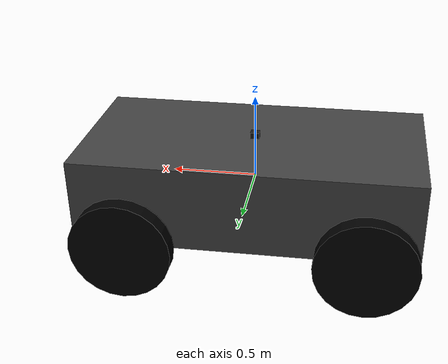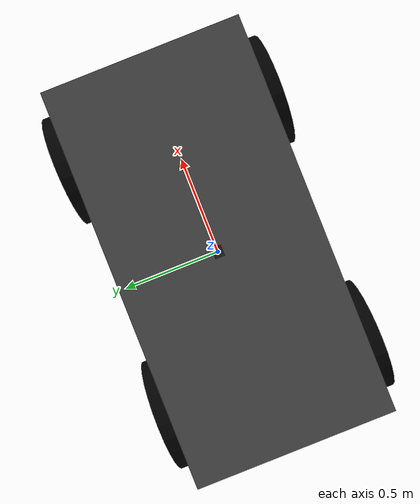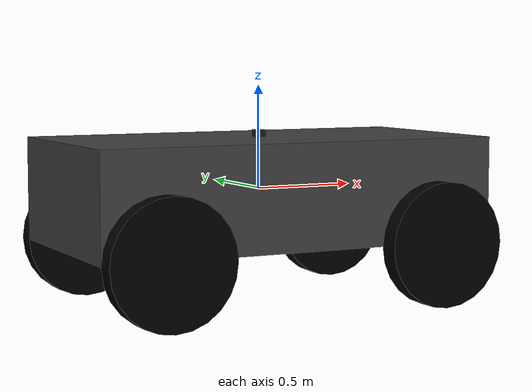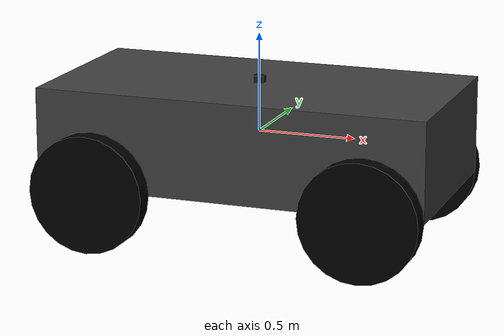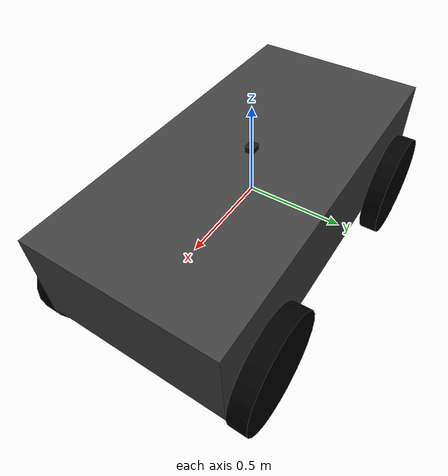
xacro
<?xml version="1.0"?>

<robot name="ackermann_steering_vehicle" xmlns:xacro="http://www.ros.org/wiki/xacro">

  <!-- Imports basically -->
  <xacro:include filename="$(find gazebo_ackermann_steering_vehicle)/sensors/lidar.xacro" />
  <xacro:include filename="$(find gazebo_ackermann_steering_vehicle)/sensors/imu.xacro" />

  <!-- Arguments -->
  <xacro:arg name="body_length" default="2.0" />
  <xacro:arg name="body_width" default="1.0" />
  <xacro:arg name="body_height" default="0.5" />
  <xacro:arg name="body_density" default="1000.0" />
  <xacro:arg name="wheel_radius" default="0.3" />
  <xacro:arg name="wheel_width" default="0.1" />
  <xacro:arg name="wheel_density" default="1000.0" />
  <xacro:arg name="max_steering_angle" default="0.6108" />
  <xacro:arg name="max_steering_angular_velocity" default="1.570796" />
  <xacro:arg name="max_steering_effort" default="1.0" />
  <xacro:arg name="max_velocity" default="1.0" />
  <xacro:arg name="max_effort" default="10.0" />

  <!-- Mathematical Constants -->
  <xacro:property name="PI" value="3.14159265"/>

  <!-- Vehicle Properties -->
  <xacro:property name="body_length" value="$(arg body_length)"/>
  <xacro:property name="body_width" value="$(arg body_width)"/>
  <xacro:property name="body_height" value="$(arg body_height)"/>
  <xacro:property name="body_density" value="$(arg body_density)"/>
  <xacro:property name="wheel_radius" value="$(arg wheel_radius)"/>
  <xacro:property name="wheel_width" value="$(arg wheel_width)"/>
  <xacro:property name="wheel_density" value="$(arg wheel_density)"/>
  <xacro:property name="max_steering_angle" value="$(arg max_steering_angle)"/>
  <xacro:property name="max_steering_angular_velocity" value="$(arg max_steering_angular_velocity)"/>
  <xacro:property name="max_steering_effort" value="$(arg max_steering_effort)"/>
  <xacro:property name="max_velocity" value="$(arg max_velocity)"/>
  <xacro:property name="max_effort" value="$(arg max_effort)"/>

  <xacro:property name="body_mass" value="${body_density * body_length * body_height * body_width}"/>
  <xacro:property name="body_inertia_x" value="${1.0/12.0 * body_mass * (body_height*body_height + body_width*body_width)}"/>
  <xacro:property name="body_inertia_y" value="${1.0/12.0 * body_mass * (body_length*body_length + body_height*body_height)}"/>
  <xacro:property name="body_inertia_z" value="${1.0/12.0 * body_mass * (body_length*body_length + body_width*body_width)}"/>
  <xacro:property name="wheel_separation" value="${body_width + wheel_width}"/>
  <xacro:property name="wheel_offset" value="${body_length/2 - wheel_radius}"/>
  <xacro:property name="wheel_mass" value="${wheel_density * PI * wheel_radius * wheel_radius * wheel_width}"/>
  <xacro:property name="wheel_inertia_x" value="${1.0/12.0 * wheel_mass * (3*wheel_radius*wheel_radius + wheel_width*wheel_width)}"/>
  <xacro:property name="wheel_inertia_y" value="${1.0/12.0 * wheel_mass * (3*wheel_radius*wheel_radius + wheel_width*wheel_width)}"/>
  <xacro:property name="wheel_inertia_z" value="${1.0/2.0 * wheel_mass * wheel_radius * wheel_radius}"/>
  <xacro:property name="max_wheel_angular_velocity" value="${max_velocity / wheel_radius}"/>

  <!-- Links -->

  <!-- Body Link -->
  <link name="body_link">
    <visual>
      <origin xyz="0.0 0.0 0.0" rpy="0.0 0.0 0.0"/>
      <geometry>
        <box size="${body_length} ${body_width} ${body_height}"/>
      </geometry>
      <material name="body_material">
        <color rgba="0.25 0.25 0.25 1.0"/>
      </material>
    </visual>
    <collision>
      <origin xyz="0.0 0.0 0.0" rpy="0.0 0.0 0.0"/>
      <geometry>
        <box size="${body_length} ${body_width} ${body_height}"/>
      </geometry>
    </collision>
    <inertial>
      <mass value="${body_mass}"/>
      <inertia ixx="${body_inertia_x}" ixy="0.0" ixz="0.0" iyy="${body_inertia_y}" iyz="0" izz="${body_inertia_z}"/>
      <origin xyz="0 0 0" rpy="0 0 0"/>
    </inertial>
  </link>

  <!-- Front Left Wheel -->
  <link name="front_left_wheel_link">
    <visual>
      <origin xyz="0.0 0.0 0.0" rpy="1.570795 0.0 0.0"/>
      <geometry>
        <cylinder radius="${wheel_radius}" length="${wheel_width}"/>
      </geometry>
      <material name="wheel_material">
        <color rgba="0.0 0.0 0.0 1.0"/>
      </material>
    </visual>
    <collision>
      <origin xyz="0.0 0.0 0.0" rpy="1.570795 0.0 0.0"/>
      <geometry>
        <cylinder radius="${wheel_radius}" length="${wheel_width}"/>
      </geometry>
    </collision>
    <inertial>
      <mass value="${wheel_mass}"/>
      <inertia ixx="${wheel_inertia_x}" ixy="0.0" ixz="0.0" iyy="${wheel_inertia_y}" iyz="0" izz="${wheel_inertia_z}"/>
      <origin xyz="0.0 0.0 0.0" rpy="1.570795 0.0 0.0"/>
    </inertial>
  </link>

    <!-- Front Left Wheel Steering -->
  <link name="front_left_steering_link">
    <visual>
      <origin xyz="0.0 0.0 0.0" rpy="1.570795 0.0 0.0"/>
      <geometry>
        <cylinder length="0.001" radius="0.01"/>
      </geometry>
      <material name="wheel_material">
        <color rgba="0.0 0.0 0.0 1.0"/>
      </material>
    </visual>
    <collision>
      <origin xyz="0.0 0.0 0.0" rpy="1.570795 0.0 0.0"/>
      <geometry>
        <cylinder length="0.001" radius="0.01"/>
      </geometry>
    </collision>
    <inertial>
      <mass value="0.01"/>
      <inertia ixx="0.0" ixy="0.0" ixz="0.0" iyy="0.0" iyz="0.0" izz="0.0"/>
      <origin xyz="0.0 0.0 0.0" rpy="1.570795 0.0 0.0"/>
    </inertial>
  </link>

  <!-- Front Right Wheel -->
  <link name="front_right_wheel_link">
    <visual>
      <origin xyz="0.0 0.0 0.0" rpy="1.570795 0.0 0.0"/>
      <geometry>
        <cylinder radius="${wheel_radius}" length="${wheel_width}"/>
      </geometry>
      <material name="wheel_material">
        <color rgba="0.0 0.0 0.0 1.0"/>
      </material>
    </visual>
    <collision>
      <origin xyz="0.0 0.0 0.0" rpy="1.570795 0.0 0.0"/>
      <geometry>
        <cylinder radius="${wheel_radius}" length="${wheel_width}"/>
      </geometry>
    </collision>
    <inertial>
      <mass value="${wheel_mass}"/>
      <inertia ixx="${wheel_inertia_x}" ixy="0.0" ixz="0.0" iyy="${wheel_inertia_y}" iyz="0" izz="${wheel_inertia_z}"/>
      <origin xyz="0.0 0.0 0.0" rpy="1.570795 0.0 0.0"/>
    </inertial>
  </link>

  <!-- Front Right Wheel Steering -->
  <link name="front_right_steering_link">
    <visual>
      <origin xyz="0.0 0.0 0.0" rpy="1.570795 0.0 0.0"/>
      <geometry>
        <cylinder length="0.001" radius="0.01"/>
      </geometry>
      <material name="wheel_material">
        <color rgba="0.0 0.0 0.0 1.0"/>
      </material>
    </visual>
    <collision>
      <origin xyz="0.0 0.0 0.0" rpy="1.570795 0.0 0.0"/>
      <geometry>
        <cylinder length="0.001" radius="0.01"/>
      </geometry>
    </collision>
    <inertial>
      <mass value="0.01"/>
      <inertia ixx="0.0" ixy="0.0" ixz="0.0" iyy="0.0" iyz="0.0" izz="0.0"/>
      <origin xyz="0.0 0.0 0.0" rpy="1.570795 0.0 0.0"/>
    </inertial>
  </link>

  <!-- Rear Left Wheel -->
  <link name="rear_left_wheel_link">
    <visual>
      <origin xyz="0.0 0.0 0.0" rpy="1.570795 0.0 0.0"/>
      <geometry>
        <cylinder radius="${wheel_radius}" length="${wheel_width}"/>
      </geometry>
      <material name="wheel_material">
        <color rgba="0.0 0.0 0.0 1.0"/>
      </material>
    </visual>
    <collision>
      <origin xyz="0.0 0.0 0.0" rpy="1.570795 0.0 0.0"/>
      <geometry>
        <cylinder radius="${wheel_radius}" length="${wheel_width}"/>
      </geometry>
    </collision>
    <inertial>
      <mass value="2"/>
      <inertia ixx="${wheel_inertia_x}" ixy="0.0" ixz="0.0" iyy="${wheel_inertia_y}" iyz="0" izz="${wheel_inertia_z}"/>
      <origin xyz="0.0 0.0 0.0" rpy="1.570795 0.0 0.0"/>
    </inertial>
  </link>

  <!-- Rear Right Wheel -->
  <link name="rear_right_wheel_link">
    <visual>
      <origin xyz="0.0 0.0 0.0" rpy="1.570795 0.0 0.0"/>
      <geometry>
        <cylinder radius="${wheel_radius}" length="${wheel_width}"/>
      </geometry>
      <material name="wheel_material">
        <color rgba="0.0 0.0 0.0 1.0"/>
      </material>
    </visual>
    <collision>
      <origin xyz="0.0 0.0 0.0" rpy="1.570795 0.0 0.0"/>
      <geometry>
        <cylinder radius="${wheel_radius}" length="${wheel_width}"/>
      </geometry>
    </collision>
    <inertial>
      <mass value="2"/>
      <inertia ixx="${wheel_inertia_x}" ixy="0.0" ixz="0.0" iyy="${wheel_inertia_y}" iyz="0" izz="${wheel_inertia_z}"/>
      <origin xyz="0.0 0.0 0.0" rpy="1.570795 0.0 0.0"/>
    </inertial>
  </link>

  <!-- Joints -->

  <!-- Front Left Steering Joint -->
  <joint name="front_left_steering_joint" type="revolute">
    <origin xyz="${wheel_offset} ${wheel_separation/2} -${body_height/2}" rpy="0 0 0"/>
    <parent link="body_link"/>
    <child link="front_left_steering_link"/>${(body_height / 2 + wheel_radius)}
    <axis xyz="0 0 1"/>
    <limit effort="${max_steering_effort}" lower="${-max_steering_angle}" upper="${max_steering_angle}" velocity="${max_steering_angular_velocity}"/>
    <dynamics damping="0.1" friction="0.1"/>
  </joint>

  <!-- Front Left Wheel Joint -->
  <joint name="front_left_wheel_joint" type="continuous">
    <origin xyz="0 0 0" rpy="0 0 0"/>
    <parent link="front_left_steering_link"/>
    <child link="front_left_wheel_link"/>
    <axis xyz="0 1 0"/>
    <limit effort="${max_effort}" velocity="${max_wheel_angular_velocity}"/>
    <dynamics damping="0.1" friction="0.1"/>
  </joint>

  <!-- Front Right Steering Joint -->
  <joint name="front_right_steering_joint" type="revolute">
    <origin xyz="${wheel_offset} ${-wheel_separation/2} -${body_height/2}" rpy="0 0 0"/>
    <parent link="body_link"/>
    <child link="front_right_steering_link"/>
    <axis xyz="0 0 1"/>
    <limit effort="${max_steering_effort}" lower="${-max_steering_angle}" upper="${max_steering_angle}" velocity="${max_steering_angular_velocity}"/>
    <dynamics damping="0.1" friction="0.1"/>
  </joint>

  <!-- Front Right Wheel Joint -->
  <joint name="front_right_wheel_joint" type="continuous">
    <origin xyz="0 0 0" rpy="0 0 0"/>
    <parent link="front_right_steering_link"/>
    <child link="front_right_wheel_link"/>
    <axis xyz="0 1 0"/>
    <limit effort="${max_effort}" velocity="${max_wheel_angular_velocity}"/>
    <dynamics damping="0.1" friction="0.1"/>
  </joint>

  <!-- Rear Left Wheel Joint -->
  <joint name="rear_left_wheel_joint" type="continuous">
    <origin xyz="-${wheel_offset} ${wheel_separation/2} -${body_height/2}" rpy="0 0 0"/>
    <parent link="body_link"/>
    <child link="rear_left_wheel_link"/>
    <axis xyz="0 1 0"/>
    <limit effort="${max_effort}" velocity="${max_wheel_angular_velocity}"/>
    <dynamics damping="0.1" friction="0.1"/>
  </joint>

  <!-- Rear Right Wheel Joint -->
  <joint name="rear_right_wheel_joint" type="continuous">
    <origin xyz="-${wheel_offset} ${-wheel_separation/2} -${body_height/2}" rpy="0 0 0"/>
    <parent link="body_link"/>
    <child link="rear_right_wheel_link"/>
    <axis xyz="0 1 0"/>
    <limit effort="${max_effort}" velocity="${max_wheel_angular_velocity}"/>
    <dynamics damping="0.1" friction="0.1"/>
  </joint>

  <!-- Gazebo Parameters -->
  <gazebo reference="body_link">
    <mu1>0.0001</mu1>
    <mu2>0.0001</mu2>
  </gazebo>

  <gazebo reference="front_right_wheel_link">
    <mu1>100.0</mu1>
    <mu2>100.0</mu2>
  </gazebo>

  <gazebo reference="front_left_wheel_link">
    <mu1>100.0</mu1>
    <mu2>100.0</mu2>
  </gazebo>

  <gazebo reference="rear_right_wheel_link">
    <mu1>100.0</mu1>
    <mu2>100.0</mu2>
  </gazebo>

  <gazebo reference="rear_left_wheel_link">
    <mu1>100.0</mu1>
    <mu2>100.0</mu2>
  </gazebo>

  <!-- Gazebo Control -->
  <ros2_control name="control" type="system">
    <hardware>
      <plugin>gz_ros2_control/GazeboSimSystem</plugin>
    </hardware>

    <joint name="front_left_steering_joint">
      <command_interface name="position">
        <param name="min">${-max_steering_angle}</param>
        <param name="max">${max_steering_angle}</param>
      </command_interface>

      <state_interface name="position"/>
      <state_interface name="velocity"/>
      <state_interface name="effort"/>
    </joint>

    <joint name="front_right_steering_joint">
      <command_interface name="position">
        <param name="min">${-max_steering_angle}</param>
        <param name="max">${max_steering_angle}</param>
      </command_interface>

      <state_interface name="position"/>
      <state_interface name="velocity"/>
      <state_interface name="effort"/>
    </joint>

    <joint name="rear_left_wheel_joint">
      <command_interface name="velocity">
        <param name="min">${-max_wheel_angular_velocity}</param>
        <param name="max">${max_wheel_angular_velocity}</param>
      </command_interface>

      <state_interface name="position"/>
      <state_interface name="velocity"/>
      <state_interface name="effort"/>
    </joint>

    <joint name="rear_right_wheel_joint">
      <command_interface name="velocity">
        <param name="min">${-max_wheel_angular_velocity}</param>
        <param name="max">${max_wheel_angular_velocity}</param>
      </command_interface>

      <state_interface name="position"/>
      <state_interface name="velocity"/>
      <state_interface name="effort"/>
    </joint>
  </ros2_control>

  <!-- Gazebo Plugins -->
  <gazebo>
    <plugin filename="gz-sim-joint-state-publisher-system" name="gz::sim::systems::JointStatePublisher">
      <topic>joint_states</topic>
      <joint_name>front_left_steering_joint</joint_name>
      <joint_name>front_right_steering_joint</joint_name>
      <joint_name>front_left_wheel_joint</joint_name>
      <joint_name>front_right_wheel_joint</joint_name>
      <joint_name>rear_left_wheel_joint</joint_name>
      <joint_name>rear_right_wheel_joint</joint_name>
    </plugin>

    <plugin filename="gz_ros2_control-system" name="gz_ros2_control::GazeboSimROS2ControlPlugin">
      <parameters>$(find gazebo_ackermann_steering_vehicle)/config/gz_ros2_control.yaml</parameters>
    </plugin>
  </gazebo>

>
  <!-- Start sensorene -->
  <xacro:imu_sensor
      prefix=""
      parent="body_link"
      frame_id="imu"
      xyz_offset="0 0 0.006"
      rpy_offset="0 0 0"
      update_rate="50.0"
      topic_name="imu/data"/>

    <xacro:lidar_sensor
      prefix=""
      parent="body_link"
      frame_id="lidar"
      xyz_offset="0 0 ${body_height/2 + 0.035/2}"
      rpy_offset="0 0 0"
      rotation_speed="10.0"
      min_range="0.03"
      max_range="12.0"
      samples="450"
      topic_name="lidar/data"/>

</robot>

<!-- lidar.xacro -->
<robot xmlns:xacro="http://www.ros.org/wiki/xacro">
    <xacro:property name="M_PI" value="3.1415926535897931" />

    <xacro:macro name="lidar_sensor" params="
        prefix:=''
        parent:='base_link'
        frame_id:='lidar'
        xyz_offset:='0 0 0.5'
        rpy_offset:='0 0 0'
        inertial_xyz_offset:='0 0 0'
        inertial_rpy_offset:='0 0 0'
        mass:=0.100
        length:=0.0543
        width:=0.047
        height:=0.035
        rotation_speed:=10
        min_range:=0.03
        max_range:=12.0
        samples:=450
        resolution:=0.8
        material_name:='imu_black'
        material_color:='0.1 0.1 0.1 1'
        gazebo_material_ambient:='0.1 0.1 0.1 1'
        gazebo_material_diffuse:='0.1 0.1 0.1 1'
        gazebo_material_specular:='0.1 0.1 0.1 1'
        topic_name:='lidar/data'
        always_on:=true"> <!-- Samples er scan per rot. så 4500Hz sample med 10Hz rot = sample på 450-->

        <xacro:property name="ixx" value="${(mass/12.0) * (height*height + width*width)}" />
        <xacro:property name="iyy" value="${(mass/12.0) * (length*length + height*height)}" />
        <xacro:property name="izz" value="${(mass/12.0) * (length*length + width*width)}" />

        <link name="${prefix}${frame_id}_link">
            <visual>
                <origin xyz="0 0 0" rpy="0 0 0"/>
                <geometry>
                    <box size="${length} ${width} ${height}"/>
                </geometry>
                <material name="${material_name}">
                    <color rgba="${material_color}"/>
                </material>
            </visual>

            <inertial>
                <mass value="${mass}" />
                <origin xyz="${inertial_xyz_offset}" rpy="${inertial_rpy_offset}"/>
                <inertia
                    ixx="${ixx}"
                    ixy="0.0"
                    ixz="0.0"
                    iyy="${iyy}"
                    iyz="0.0"
                    izz="${izz}" />
            </inertial>
        </link>

        <joint name="${prefix}${frame_id}_joint" type="fixed">
            <parent link="${prefix}${parent}"/>
            <child link="${prefix}${frame_id}_link" />
            <origin xyz="${xyz_offset}" rpy="${rpy_offset}"/>
        </joint>

        <gazebo reference="${prefix}${frame_id}_link">
            <material>
                <ambient>${gazebo_material_ambient}</ambient>
                <diffuse>${gazebo_material_diffuse}</diffuse>
                <specular>${gazebo_material_specular}</specular>
            </material>
            <sensor name="${prefix}${frame_id}_link" type="gpu_lidar">
                <pose relative_to='${prefix}${frame_id}_link'>0 0 0 0 0 0</pose>
                <topic>${topic_name}</topic>
                <update_rate>${rotation_speed}</update_rate>
                <frame_name>${prefix}${frame_id}_link</frame_name>
                <ray>
                    <scan>
                        <horizontal>
                            <samples>${samples}</samples>
                            <resolution>1</resolution>
                            <min_angle>-${M_PI}</min_angle>
                            <max_angle>${M_PI}</max_angle>
                        </horizontal>
                    </scan>
                    <range>
                        <min>${min_range}</min>
                        <max>${max_range}</max>
                        <resolution>0.01</resolution>
                    </range>
                </ray>
                <always_on>${always_on}</always_on>
                <visualize>false</visualize>
            </sensor>
        </gazebo>
    </xacro:macro>
</robot>

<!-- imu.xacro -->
<robot xmlns:xacro="http://www.ros.org/wiki/xacro">
    <xacro:property name="M_PI" value="3.1415926535897931" />

    <xacro:macro name="imu_sensor" params="
        prefix:=''
        parent:='base_link'
        frame_id:='imu'
        xyz_offset:='0 0 0'
        rpy_offset:='0 0 0'
        inertial_xyz_offset:='0 0 0'
        inertial_rpy_offset:='0 0 0'
        mass:=0.031
        length:=0.03899
        width:=0.03785
        height:=0.01338
        material_name:='imu_black'
        material_color:='0.1 0.1 0.1 1'
        gazebo_material_ambient:='0.1 0.1 0.1 1'
        gazebo_material_diffuse:='0.1 0.1 0.1 1'
        gazebo_material_specular:='0.1 0.1 0.1 1'
        update_rate:='15.0'
        topic_name:='imu/data'
        always_on:=true
        visualize:=false">

        <xacro:property name="ixx" value="${(mass/12.0) * (height*height + width*width)}" />
        <xacro:property name="iyy" value="${(mass/12.0) * (length*length + height*height)}" />
        <xacro:property name="izz" value="${(mass/12.0) * (length*length + width*width)}" />

        <link name="${prefix}${frame_id}_link">
            <visual>
                <origin xyz="0 0 0" rpy="0 0 0"/>
                <geometry>
                    <box size="${length} ${width} ${height}"/>
                </geometry>
                <material name="${material_name}">
                    <color rgba="${material_color}"/>
                </material>
            </visual>

            <inertial>
                <mass value="${mass}" />
                <origin xyz="${inertial_xyz_offset}" rpy="${inertial_rpy_offset}"/>
                <inertia
                    ixx="${ixx}"
                    ixy="0.0"
                    ixz="0.0"
                    iyy="${iyy}"
                    iyz="0.0"
                    izz="${izz}" />
            </inertial>
        </link>

        <joint name="${prefix}${frame_id}_joint" type="fixed">
            <parent link="${prefix}${parent}"/>
            <child link="${prefix}${frame_id}_link" />
            <origin xyz="${xyz_offset}" rpy="${rpy_offset}"/>
        </joint>

        <gazebo reference="${prefix}${frame_id}_link">
            <material>
                <ambient>${gazebo_material_ambient}</ambient>
                <diffuse>${gazebo_material_diffuse}</diffuse>
                <specular>${gazebo_material_specular}</specular>
            </material>
            <sensor name="${prefix}imu_sensor" type="imu">
                <pose>0 0 0 0 0 ${-M_PI/2}</pose>
                <topic>${topic_name}</topic>
                <update_rate>${update_rate}</update_rate>
                <always_on>${always_on}</always_on>
                <visualize>${visualize}</visualize>
                <frame_name>${prefix}${frame_id}_link</frame_name>
            </sensor>
        </gazebo>
    </xacro:macro>
</robot>
